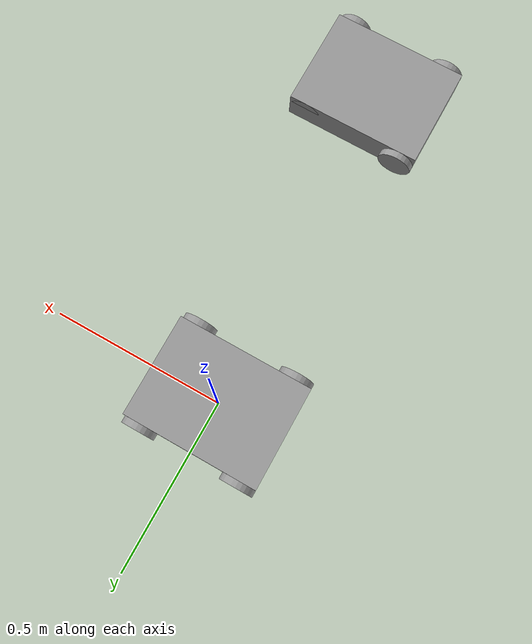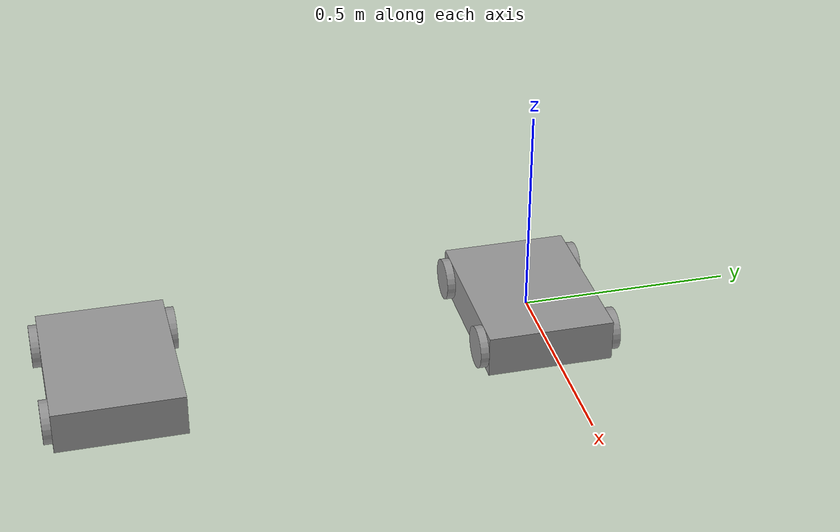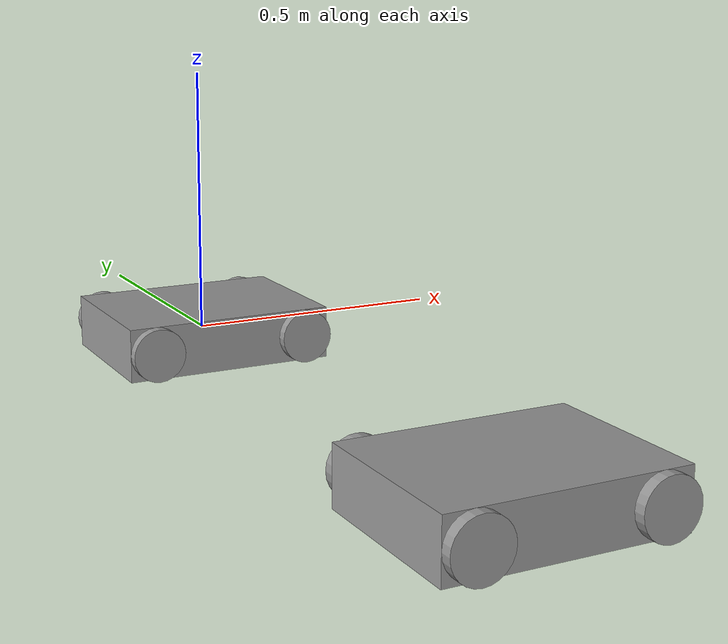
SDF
<?xml version='1.0'?>
<sdf version='1.7'>
  <model name='model'>
    <link name='link_0'>
      <inertial>
        <mass>1</mass>
        <inertia>
          <ixx>0.166667</ixx>
          <ixy>0</ixy>
          <ixz>0</ixz>
          <iyy>0.166667</iyy>
          <iyz>0</iyz>
          <izz>0.166667</izz>
        </inertia>
        <pose>0 0 0 0 -0 0</pose>
      </inertial>
      <pose>0 -2e-06 0 0 -0 0</pose>
      <gravity>1</gravity>
      <self_collide>0</self_collide>
      <kinematic>0</kinematic>
      <enable_wind>0</enable_wind>
      <visual name='visual'>
        <pose>0 0 0 0 -0 0</pose>
        <geometry>
          <box>
            <size>0.4 0.3 0.1</size>
          </box>
        </geometry>
        <material>
          <lighting>1</lighting>
          <script>
            <uri>file://media/materials/scripts/gazebo.material</uri>
            <name>Gazebo/Grey</name>
          </script>
          <shader type='pixel'>
            <normal_map>__default__</normal_map>
          </shader>
          <ambient>0.3 0.3 0.3 1</ambient>
          <diffuse>0.7 0.7 0.7 1</diffuse>
          <specular>0.01 0.01 0.01 1</specular>
          <emissive>0 0 0 1</emissive>
        </material>
        <transparency>0</transparency>
        <cast_shadows>1</cast_shadows>
      </visual>
      <collision name='collision'>
        <laser_retro>0</laser_retro>
        <max_contacts>10</max_contacts>
        <pose>0 0 0 0 -0 0</pose>
        <geometry>
          <box>
            <size>0.4 0.3 0.1</size>
          </box>
        </geometry>
        <surface>
          <friction>
            <ode>
              <mu>1</mu>
              <mu2>1</mu2>
              <fdir1>0 0 0</fdir1>
              <slip1>0</slip1>
              <slip2>0</slip2>
            </ode>
            <torsional>
              <coefficient>1</coefficient>
              <patch_radius>0</patch_radius>
              <surface_radius>0</surface_radius>
              <use_patch_radius>1</use_patch_radius>
              <ode>
                <slip>0</slip>
              </ode>
            </torsional>
          </friction>
          <bounce>
            <restitution_coefficient>0</restitution_coefficient>
            <threshold>1e+06</threshold>
          </bounce>
          <contact>
            <collide_without_contact>0</collide_without_contact>
            <collide_without_contact_bitmask>1</collide_without_contact_bitmask>
            <collide_bitmask>1</collide_bitmask>
            <ode>
              <soft_cfm>0</soft_cfm>
              <soft_erp>0.2</soft_erp>
              <kp>1e+13</kp>
              <kd>1</kd>
              <max_vel>0.01</max_vel>
              <min_depth>0</min_depth>
            </ode>
            <bullet>
              <split_impulse>1</split_impulse>
              <split_impulse_penetration_threshold>-0.01</split_impulse_penetration_threshold>
              <soft_cfm>0</soft_cfm>
              <soft_erp>0.2</soft_erp>
              <kp>1e+13</kp>
              <kd>1</kd>
            </bullet>
          </contact>
        </surface>
      </collision>
    </link>
    <link name='link_0_clone'>
      <inertial>
        <mass>1</mass>
        <inertia>
          <ixx>0.166667</ixx>
          <ixy>0</ixy>
          <ixz>0</ixz>
          <iyy>0.166667</iyy>
          <iyz>0</iyz>
          <izz>0.166667</izz>
        </inertia>
        <pose>0 0 0 0 -0 0</pose>
      </inertial>
      <pose>0.052453 -1.00786 0 0 -0 0</pose>
      <gravity>1</gravity>
      <self_collide>0</self_collide>
      <kinematic>0</kinematic>
      <enable_wind>0</enable_wind>
      <visual name='visual'>
        <pose>0 0 0 0 -0 0</pose>
        <geometry>
          <box>
            <size>0.4 0.3 0.1</size>
          </box>
        </geometry>
        <material>
          <lighting>1</lighting>
          <script>
            <uri>file://media/materials/scripts/gazebo.material</uri>
            <name>Gazebo/Grey</name>
          </script>
          <shader type='pixel'>
            <normal_map>__default__</normal_map>
          </shader>
          <ambient>0.3 0.3 0.3 1</ambient>
          <diffuse>0.7 0.7 0.7 1</diffuse>
          <specular>0.01 0.01 0.01 1</specular>
          <emissive>0 0 0 1</emissive>
        </material>
        <transparency>0</transparency>
        <cast_shadows>1</cast_shadows>
      </visual>
      <collision name='collision'>
        <laser_retro>0</laser_retro>
        <max_contacts>10</max_contacts>
        <pose>0 0 0 0 -0 0</pose>
        <geometry>
          <box>
            <size>0.4 0.3 0.1</size>
          </box>
        </geometry>
        <surface>
          <friction>
            <ode>
              <mu>1</mu>
              <mu2>1</mu2>
              <fdir1>0 0 0</fdir1>
              <slip1>0</slip1>
              <slip2>0</slip2>
            </ode>
            <torsional>
              <coefficient>1</coefficient>
              <patch_radius>0</patch_radius>
              <surface_radius>0</surface_radius>
              <use_patch_radius>1</use_patch_radius>
              <ode>
                <slip>0</slip>
              </ode>
            </torsional>
          </friction>
          <bounce>
            <restitution_coefficient>0</restitution_coefficient>
            <threshold>1e+06</threshold>
          </bounce>
          <contact>
            <collide_without_contact>0</collide_without_contact>
            <collide_without_contact_bitmask>1</collide_without_contact_bitmask>
            <collide_bitmask>1</collide_bitmask>
            <ode>
              <soft_cfm>0</soft_cfm>
              <soft_erp>0.2</soft_erp>
              <kp>1e+13</kp>
              <kd>1</kd>
              <max_vel>0.01</max_vel>
              <min_depth>0</min_depth>
            </ode>
            <bullet>
              <split_impulse>1</split_impulse>
              <split_impulse_penetration_threshold>-0.01</split_impulse_penetration_threshold>
              <soft_cfm>0</soft_cfm>
              <soft_erp>0.2</soft_erp>
              <kp>1e+13</kp>
              <kd>1</kd>
            </bullet>
          </contact>
        </surface>
      </collision>
    </link>
    <link name='link_1'>
      <inertial>
        <mass>1</mass>
        <inertia>
          <ixx>0.145833</ixx>
          <ixy>0</ixy>
          <ixz>0</ixz>
          <iyy>0.145833</iyy>
          <iyz>0</iyz>
          <izz>0.125</izz>
        </inertia>
        <pose>0 0 0 0 -0 0</pose>
      </inertial>
      <pose>-0.149999 -0.160015 0 1.5707 -0 0</pose>
      <gravity>1</gravity>
      <self_collide>0</self_collide>
      <kinematic>0</kinematic>
      <enable_wind>0</enable_wind>
      <visual name='visual'>
        <pose>0 0 0 0 -0 0</pose>
        <geometry>
          <cylinder>
            <radius>0.05</radius>
            <length>0.02</length>
          </cylinder>
        </geometry>
        <material>
          <lighting>1</lighting>
          <script>
            <uri>file://media/materials/scripts/gazebo.material</uri>
            <name>Gazebo/Grey</name>
          </script>
          <shader type='pixel'>
            <normal_map>__default__</normal_map>
          </shader>
          <ambient>0.3 0.3 0.3 1</ambient>
          <diffuse>0.7 0.7 0.7 1</diffuse>
          <specular>0.01 0.01 0.01 1</specular>
          <emissive>0 0 0 1</emissive>
        </material>
        <transparency>0</transparency>
        <cast_shadows>1</cast_shadows>
      </visual>
      <collision name='collision'>
        <laser_retro>0</laser_retro>
        <max_contacts>10</max_contacts>
        <pose>0 0 0 0 -0 0</pose>
        <geometry>
          <cylinder>
            <radius>0.05</radius>
            <length>0.02</length>
          </cylinder>
        </geometry>
        <surface>
          <friction>
            <ode>
              <mu>1</mu>
              <mu2>1</mu2>
              <fdir1>0 0 0</fdir1>
              <slip1>0</slip1>
              <slip2>0</slip2>
            </ode>
            <torsional>
              <coefficient>1</coefficient>
              <patch_radius>0</patch_radius>
              <surface_radius>0</surface_radius>
              <use_patch_radius>1</use_patch_radius>
              <ode>
                <slip>0</slip>
              </ode>
            </torsional>
          </friction>
          <bounce>
            <restitution_coefficient>0</restitution_coefficient>
            <threshold>1e+06</threshold>
          </bounce>
          <contact>
            <collide_without_contact>0</collide_without_contact>
            <collide_without_contact_bitmask>1</collide_without_contact_bitmask>
            <collide_bitmask>1</collide_bitmask>
            <ode>
              <soft_cfm>0</soft_cfm>
              <soft_erp>0.2</soft_erp>
              <kp>1e+13</kp>
              <kd>1</kd>
              <max_vel>0.01</max_vel>
              <min_depth>0</min_depth>
            </ode>
            <bullet>
              <split_impulse>1</split_impulse>
              <split_impulse_penetration_threshold>-0.01</split_impulse_penetration_threshold>
              <soft_cfm>0</soft_cfm>
              <soft_erp>0.2</soft_erp>
              <kp>1e+13</kp>
              <kd>1</kd>
            </bullet>
          </contact>
        </surface>
      </collision>
    </link>
    <link name='link_1_clone'>
      <inertial>
        <mass>1</mass>
        <inertia>
          <ixx>0.145833</ixx>
          <ixy>0</ixy>
          <ixz>0</ixz>
          <iyy>0.145833</iyy>
          <iyz>0</iyz>
          <izz>0.125</izz>
        </inertia>
        <pose>0 0 0 0 -0 0</pose>
      </inertial>
      <pose>0.15 0.160003 0 1.5707 -0 0</pose>
      <gravity>1</gravity>
      <self_collide>0</self_collide>
      <kinematic>0</kinematic>
      <enable_wind>0</enable_wind>
      <visual name='visual'>
        <pose>0 0 0 0 -0 0</pose>
        <geometry>
          <cylinder>
            <radius>0.05</radius>
            <length>0.02</length>
          </cylinder>
        </geometry>
        <material>
          <lighting>1</lighting>
          <script>
            <uri>file://media/materials/scripts/gazebo.material</uri>
            <name>Gazebo/Grey</name>
          </script>
          <shader type='pixel'>
            <normal_map>__default__</normal_map>
          </shader>
          <ambient>0.3 0.3 0.3 1</ambient>
          <diffuse>0.7 0.7 0.7 1</diffuse>
          <specular>0.01 0.01 0.01 1</specular>
          <emissive>0 0 0 1</emissive>
        </material>
        <transparency>0</transparency>
        <cast_shadows>1</cast_shadows>
      </visual>
      <collision name='collision'>
        <laser_retro>0</laser_retro>
        <max_contacts>10</max_contacts>
        <pose>0 0 0 0 -0 0</pose>
        <geometry>
          <cylinder>
            <radius>0.05</radius>
            <length>0.02</length>
          </cylinder>
        </geometry>
        <surface>
          <friction>
            <ode>
              <mu>1</mu>
              <mu2>1</mu2>
              <fdir1>0 0 0</fdir1>
              <slip1>0</slip1>
              <slip2>0</slip2>
            </ode>
            <torsional>
              <coefficient>1</coefficient>
              <patch_radius>0</patch_radius>
              <surface_radius>0</surface_radius>
              <use_patch_radius>1</use_patch_radius>
              <ode>
                <slip>0</slip>
              </ode>
            </torsional>
          </friction>
          <bounce>
            <restitution_coefficient>0</restitution_coefficient>
            <threshold>1e+06</threshold>
          </bounce>
          <contact>
            <collide_without_contact>0</collide_without_contact>
            <collide_without_contact_bitmask>1</collide_without_contact_bitmask>
            <collide_bitmask>1</collide_bitmask>
            <ode>
              <soft_cfm>0</soft_cfm>
              <soft_erp>0.2</soft_erp>
              <kp>1e+13</kp>
              <kd>1</kd>
              <max_vel>0.01</max_vel>
              <min_depth>0</min_depth>
            </ode>
            <bullet>
              <split_impulse>1</split_impulse>
              <split_impulse_penetration_threshold>-0.01</split_impulse_penetration_threshold>
              <soft_cfm>0</soft_cfm>
              <soft_erp>0.2</soft_erp>
              <kp>1e+13</kp>
              <kd>1</kd>
            </bullet>
          </contact>
        </surface>
      </collision>
    </link>
    <link name='link_1_clone_0'>
      <inertial>
        <mass>1</mass>
        <inertia>
          <ixx>0.145833</ixx>
          <ixy>0</ixy>
          <ixz>0</ixz>
          <iyy>0.145833</iyy>
          <iyz>0</iyz>
          <izz>0.125</izz>
        </inertia>
        <pose>0 0 0 0 -0 0</pose>
      </inertial>
      <pose>0.15 -0.160007 0 1.5707 -0 0</pose>
      <gravity>1</gravity>
      <self_collide>0</self_collide>
      <kinematic>0</kinematic>
      <enable_wind>0</enable_wind>
      <visual name='visual'>
        <pose>0 0 0 0 -0 0</pose>
        <geometry>
          <cylinder>
            <radius>0.05</radius>
            <length>0.02</length>
          </cylinder>
        </geometry>
        <material>
          <lighting>1</lighting>
          <script>
            <uri>file://media/materials/scripts/gazebo.material</uri>
            <name>Gazebo/Grey</name>
          </script>
          <shader type='pixel'>
            <normal_map>__default__</normal_map>
          </shader>
          <ambient>0.3 0.3 0.3 1</ambient>
          <diffuse>0.7 0.7 0.7 1</diffuse>
          <specular>0.01 0.01 0.01 1</specular>
          <emissive>0 0 0 1</emissive>
        </material>
        <transparency>0</transparency>
        <cast_shadows>1</cast_shadows>
      </visual>
      <collision name='collision'>
        <laser_retro>0</laser_retro>
        <max_contacts>10</max_contacts>
        <pose>0 0 0 0 -0 0</pose>
        <geometry>
          <cylinder>
            <radius>0.05</radius>
            <length>0.02</length>
          </cylinder>
        </geometry>
        <surface>
          <friction>
            <ode>
              <mu>1</mu>
              <mu2>1</mu2>
              <fdir1>0 0 0</fdir1>
              <slip1>0</slip1>
              <slip2>0</slip2>
            </ode>
            <torsional>
              <coefficient>1</coefficient>
              <patch_radius>0</patch_radius>
              <surface_radius>0</surface_radius>
              <use_patch_radius>1</use_patch_radius>
              <ode>
                <slip>0</slip>
              </ode>
            </torsional>
          </friction>
          <bounce>
            <restitution_coefficient>0</restitution_coefficient>
            <threshold>1e+06</threshold>
          </bounce>
          <contact>
            <collide_without_contact>0</collide_without_contact>
            <collide_without_contact_bitmask>1</collide_without_contact_bitmask>
            <collide_bitmask>1</collide_bitmask>
            <ode>
              <soft_cfm>0</soft_cfm>
              <soft_erp>0.2</soft_erp>
              <kp>1e+13</kp>
              <kd>1</kd>
              <max_vel>0.01</max_vel>
              <min_depth>0</min_depth>
            </ode>
            <bullet>
              <split_impulse>1</split_impulse>
              <split_impulse_penetration_threshold>-0.01</split_impulse_penetration_threshold>
              <soft_cfm>0</soft_cfm>
              <soft_erp>0.2</soft_erp>
              <kp>1e+13</kp>
              <kd>1</kd>
            </bullet>
          </contact>
        </surface>
      </collision>
    </link>
    <link name='link_1_clone_1'>
      <inertial>
        <mass>1</mass>
        <inertia>
          <ixx>0.145833</ixx>
          <ixy>0</ixy>
          <ixz>0</ixz>
          <iyy>0.145833</iyy>
          <iyz>0</iyz>
          <izz>0.125</izz>
        </inertia>
        <pose>0 0 0 0 -0 0</pose>
      </inertial>
      <pose>-0.149999 0.160003 0 1.5707 -0 0</pose>
      <gravity>1</gravity>
      <self_collide>0</self_collide>
      <kinematic>0</kinematic>
      <enable_wind>0</enable_wind>
      <visual name='visual'>
        <pose>0 0 0 0 -0 0</pose>
        <geometry>
          <cylinder>
            <radius>0.05</radius>
            <length>0.02</length>
          </cylinder>
        </geometry>
        <material>
          <lighting>1</lighting>
          <script>
            <uri>file://media/materials/scripts/gazebo.material</uri>
            <name>Gazebo/Grey</name>
          </script>
          <shader type='pixel'>
            <normal_map>__default__</normal_map>
          </shader>
          <ambient>0.3 0.3 0.3 1</ambient>
          <diffuse>0.7 0.7 0.7 1</diffuse>
          <specular>0.01 0.01 0.01 1</specular>
          <emissive>0 0 0 1</emissive>
        </material>
        <transparency>0</transparency>
        <cast_shadows>1</cast_shadows>
      </visual>
      <collision name='collision'>
        <laser_retro>0</laser_retro>
        <max_contacts>10</max_contacts>
        <pose>0 0 0 0 -0 0</pose>
        <geometry>
          <cylinder>
            <radius>0.05</radius>
            <length>0.02</length>
          </cylinder>
        </geometry>
        <surface>
          <friction>
            <ode>
              <mu>1</mu>
              <mu2>1</mu2>
              <fdir1>0 0 0</fdir1>
              <slip1>0</slip1>
              <slip2>0</slip2>
            </ode>
            <torsional>
              <coefficient>1</coefficient>
              <patch_radius>0</patch_radius>
              <surface_radius>0</surface_radius>
              <use_patch_radius>1</use_patch_radius>
              <ode>
                <slip>0</slip>
              </ode>
            </torsional>
          </friction>
          <bounce>
            <restitution_coefficient>0</restitution_coefficient>
            <threshold>1e+06</threshold>
          </bounce>
          <contact>
            <collide_without_contact>0</collide_without_contact>
            <collide_without_contact_bitmask>1</collide_without_contact_bitmask>
            <collide_bitmask>1</collide_bitmask>
            <ode>
              <soft_cfm>0</soft_cfm>
              <soft_erp>0.2</soft_erp>
              <kp>1e+13</kp>
              <kd>1</kd>
              <max_vel>0.01</max_vel>
              <min_depth>0</min_depth>
            </ode>
            <bullet>
              <split_impulse>1</split_impulse>
              <split_impulse_penetration_threshold>-0.01</split_impulse_penetration_threshold>
              <soft_cfm>0</soft_cfm>
              <soft_erp>0.2</soft_erp>
              <kp>1e+13</kp>
              <kd>1</kd>
            </bullet>
          </contact>
        </surface>
      </collision>
    </link>
    <link name='link_1_clone_2'>
      <inertial>
        <mass>1</mass>
        <inertia>
          <ixx>0.145833</ixx>
          <ixy>0</ixy>
          <ixz>0</ixz>
          <iyy>0.145833</iyy>
          <iyz>0</iyz>
          <izz>0.125</izz>
        </inertia>
        <pose>0 0 0 0 -0 0</pose>
      </inertial>
      <pose>-0.097547 -1.16786 0 1.5707 -0 0</pose>
      <gravity>1</gravity>
      <self_collide>0</self_collide>
      <kinematic>0</kinematic>
      <enable_wind>0</enable_wind>
      <visual name='visual'>
        <pose>0 0 0 0 -0 0</pose>
        <geometry>
          <cylinder>
            <radius>0.05</radius>
            <length>0.02</length>
          </cylinder>
        </geometry>
        <material>
          <lighting>1</lighting>
          <script>
            <uri>file://media/materials/scripts/gazebo.material</uri>
            <name>Gazebo/Grey</name>
          </script>
          <shader type='pixel'>
            <normal_map>__default__</normal_map>
          </shader>
          <ambient>0.3 0.3 0.3 1</ambient>
          <diffuse>0.7 0.7 0.7 1</diffuse>
          <specular>0.01 0.01 0.01 1</specular>
          <emissive>0 0 0 1</emissive>
        </material>
        <transparency>0</transparency>
        <cast_shadows>1</cast_shadows>
      </visual>
      <collision name='collision'>
        <laser_retro>0</laser_retro>
        <max_contacts>10</max_contacts>
        <pose>0 0 0 0 -0 0</pose>
        <geometry>
          <cylinder>
            <radius>0.05</radius>
            <length>0.02</length>
          </cylinder>
        </geometry>
        <surface>
          <friction>
            <ode>
              <mu>1</mu>
              <mu2>1</mu2>
              <fdir1>0 0 0</fdir1>
              <slip1>0</slip1>
              <slip2>0</slip2>
            </ode>
            <torsional>
              <coefficient>1</coefficient>
              <patch_radius>0</patch_radius>
              <surface_radius>0</surface_radius>
              <use_patch_radius>1</use_patch_radius>
              <ode>
                <slip>0</slip>
              </ode>
            </torsional>
          </friction>
          <bounce>
            <restitution_coefficient>0</restitution_coefficient>
            <threshold>1e+06</threshold>
          </bounce>
          <contact>
            <collide_without_contact>0</collide_without_contact>
            <collide_without_contact_bitmask>1</collide_without_contact_bitmask>
            <collide_bitmask>1</collide_bitmask>
            <ode>
              <soft_cfm>0</soft_cfm>
              <soft_erp>0.2</soft_erp>
              <kp>1e+13</kp>
              <kd>1</kd>
              <max_vel>0.01</max_vel>
              <min_depth>0</min_depth>
            </ode>
            <bullet>
              <split_impulse>1</split_impulse>
              <split_impulse_penetration_threshold>-0.01</split_impulse_penetration_threshold>
              <soft_cfm>0</soft_cfm>
              <soft_erp>0.2</soft_erp>
              <kp>1e+13</kp>
              <kd>1</kd>
            </bullet>
          </contact>
        </surface>
      </collision>
    </link>
    <link name='link_1_clone_2_clone'>
      <inertial>
        <mass>1</mass>
        <inertia>
          <ixx>0.145833</ixx>
          <ixy>0</ixy>
          <ixz>0</ixz>
          <iyy>0.145833</iyy>
          <iyz>0</iyz>
          <izz>0.125</izz>
        </inertia>
        <pose>0 0 0 0 -0 0</pose>
      </inertial>
      <pose>-0.097547 -0.847852 0 1.5707 -0 0</pose>
      <gravity>1</gravity>
      <self_collide>0</self_collide>
      <kinematic>0</kinematic>
      <enable_wind>0</enable_wind>
      <visual name='visual'>
        <pose>0 0 0 0 -0 0</pose>
        <geometry>
          <cylinder>
            <radius>0.05</radius>
            <length>0.02</length>
          </cylinder>
        </geometry>
        <material>
          <lighting>1</lighting>
          <script>
            <uri>file://media/materials/scripts/gazebo.material</uri>
            <name>Gazebo/Grey</name>
          </script>
          <shader type='pixel'>
            <normal_map>__default__</normal_map>
          </shader>
          <ambient>0.3 0.3 0.3 1</ambient>
          <diffuse>0.7 0.7 0.7 1</diffuse>
          <specular>0.01 0.01 0.01 1</specular>
          <emissive>0 0 0 1</emissive>
        </material>
        <transparency>0</transparency>
        <cast_shadows>1</cast_shadows>
      </visual>
      <collision name='collision'>
        <laser_retro>0</laser_retro>
        <max_contacts>10</max_contacts>
        <pose>0 0 0 0 -0 0</pose>
        <geometry>
          <cylinder>
            <radius>0.05</radius>
            <length>0.02</length>
          </cylinder>
        </geometry>
        <surface>
          <friction>
            <ode>
              <mu>1</mu>
              <mu2>1</mu2>
              <fdir1>0 0 0</fdir1>
              <slip1>0</slip1>
              <slip2>0</slip2>
            </ode>
            <torsional>
              <coefficient>1</coefficient>
              <patch_radius>0</patch_radius>
              <surface_radius>0</surface_radius>
              <use_patch_radius>1</use_patch_radius>
              <ode>
                <slip>0</slip>
              </ode>
            </torsional>
          </friction>
          <bounce>
            <restitution_coefficient>0</restitution_coefficient>
            <threshold>1e+06</threshold>
          </bounce>
          <contact>
            <collide_without_contact>0</collide_without_contact>
            <collide_without_contact_bitmask>1</collide_without_contact_bitmask>
            <collide_bitmask>1</collide_bitmask>
            <ode>
              <soft_cfm>0</soft_cfm>
              <soft_erp>0.2</soft_erp>
              <kp>1e+13</kp>
              <kd>1</kd>
              <max_vel>0.01</max_vel>
              <min_depth>0</min_depth>
            </ode>
            <bullet>
              <split_impulse>1</split_impulse>
              <split_impulse_penetration_threshold>-0.01</split_impulse_penetration_threshold>
              <soft_cfm>0</soft_cfm>
              <soft_erp>0.2</soft_erp>
              <kp>1e+13</kp>
              <kd>1</kd>
            </bullet>
          </contact>
        </surface>
      </collision>
    </link>
    <link name='link_1_clone_2_clone_clone'>
      <inertial>
        <mass>1</mass>
        <inertia>
          <ixx>0.145833</ixx>
          <ixy>0</ixy>
          <ixz>0</ixz>
          <iyy>0.145833</iyy>
          <iyz>0</iyz>
          <izz>0.125</izz>
        </inertia>
        <pose>0 0 0 0 -0 0</pose>
      </inertial>
      <pose>0.202453 -0.867862 0 1.5707 -0 0</pose>
      <gravity>1</gravity>
      <self_collide>0</self_collide>
      <kinematic>0</kinematic>
      <enable_wind>0</enable_wind>
      <visual name='visual'>
        <pose>0 0 0 0 -0 0</pose>
        <geometry>
          <cylinder>
            <radius>0.05</radius>
            <length>0.02</length>
          </cylinder>
        </geometry>
        <material>
          <lighting>1</lighting>
          <script>
            <uri>file://media/materials/scripts/gazebo.material</uri>
            <name>Gazebo/Grey</name>
          </script>
          <shader type='pixel'>
            <normal_map>__default__</normal_map>
          </shader>
          <ambient>0.3 0.3 0.3 1</ambient>
          <diffuse>0.7 0.7 0.7 1</diffuse>
          <specular>0.01 0.01 0.01 1</specular>
          <emissive>0 0 0 1</emissive>
        </material>
        <transparency>0</transparency>
        <cast_shadows>1</cast_shadows>
      </visual>
      <collision name='collision'>
        <laser_retro>0</laser_retro>
        <max_contacts>10</max_contacts>
        <pose>0 0 0 0 -0 0</pose>
        <geometry>
          <cylinder>
            <radius>0.05</radius>
            <length>0.02</length>
          </cylinder>
        </geometry>
        <surface>
          <friction>
            <ode>
              <mu>1</mu>
              <mu2>1</mu2>
              <fdir1>0 0 0</fdir1>
              <slip1>0</slip1>
              <slip2>0</slip2>
            </ode>
            <torsional>
              <coefficient>1</coefficient>
              <patch_radius>0</patch_radius>
              <surface_radius>0</surface_radius>
              <use_patch_radius>1</use_patch_radius>
              <ode>
                <slip>0</slip>
              </ode>
            </torsional>
          </friction>
          <bounce>
            <restitution_coefficient>0</restitution_coefficient>
            <threshold>1e+06</threshold>
          </bounce>
          <contact>
            <collide_without_contact>0</collide_without_contact>
            <collide_without_contact_bitmask>1</collide_without_contact_bitmask>
            <collide_bitmask>1</collide_bitmask>
            <ode>
              <soft_cfm>0</soft_cfm>
              <soft_erp>0.2</soft_erp>
              <kp>1e+13</kp>
              <kd>1</kd>
              <max_vel>0.01</max_vel>
              <min_depth>0</min_depth>
            </ode>
            <bullet>
              <split_impulse>1</split_impulse>
              <split_impulse_penetration_threshold>-0.01</split_impulse_penetration_threshold>
              <soft_cfm>0</soft_cfm>
              <soft_erp>0.2</soft_erp>
              <kp>1e+13</kp>
              <kd>1</kd>
            </bullet>
          </contact>
        </surface>
      </collision>
    </link>
    <link name='link_1_clone_2_clone_clone_clone'>
      <inertial>
        <mass>1</mass>
        <inertia>
          <ixx>0.145833</ixx>
          <ixy>0</ixy>
          <ixz>0</ixz>
          <iyy>0.145833</iyy>
          <iyz>0</iyz>
          <izz>0.125</izz>
        </inertia>
        <pose>0 0 0 0 -0 0</pose>
      </inertial>
      <pose>0.202453 -1.16786 0 1.5707 -0 0</pose>
      <gravity>1</gravity>
      <self_collide>0</self_collide>
      <kinematic>0</kinematic>
      <enable_wind>0</enable_wind>
      <visual name='visual'>
        <pose>0 0 0 0 -0 0</pose>
        <geometry>
          <cylinder>
            <radius>0.05</radius>
            <length>0.02</length>
          </cylinder>
        </geometry>
        <material>
          <lighting>1</lighting>
          <script>
            <uri>file://media/materials/scripts/gazebo.material</uri>
            <name>Gazebo/Grey</name>
          </script>
          <shader type='pixel'>
            <normal_map>__default__</normal_map>
          </shader>
          <ambient>0.3 0.3 0.3 1</ambient>
          <diffuse>0.7 0.7 0.7 1</diffuse>
          <specular>0.01 0.01 0.01 1</specular>
          <emissive>0 0 0 1</emissive>
        </material>
        <transparency>0</transparency>
        <cast_shadows>1</cast_shadows>
      </visual>
      <collision name='collision'>
        <laser_retro>0</laser_retro>
        <max_contacts>10</max_contacts>
        <pose>0 0 0 0 -0 0</pose>
        <geometry>
          <cylinder>
            <radius>0.05</radius>
            <length>0.02</length>
          </cylinder>
        </geometry>
        <surface>
          <friction>
            <ode>
              <mu>1</mu>
              <mu2>1</mu2>
              <fdir1>0 0 0</fdir1>
              <slip1>0</slip1>
              <slip2>0</slip2>
            </ode>
            <torsional>
              <coefficient>1</coefficient>
              <patch_radius>0</patch_radius>
              <surface_radius>0</surface_radius>
              <use_patch_radius>1</use_patch_radius>
              <ode>
                <slip>0</slip>
              </ode>
            </torsional>
          </friction>
          <bounce>
            <restitution_coefficient>0</restitution_coefficient>
            <threshold>1e+06</threshold>
          </bounce>
          <contact>
            <collide_without_contact>0</collide_without_contact>
            <collide_without_contact_bitmask>1</collide_without_contact_bitmask>
            <collide_bitmask>1</collide_bitmask>
            <ode>
              <soft_cfm>0</soft_cfm>
              <soft_erp>0.2</soft_erp>
              <kp>1e+13</kp>
              <kd>1</kd>
              <max_vel>0.01</max_vel>
              <min_depth>0</min_depth>
            </ode>
            <bullet>
              <split_impulse>1</split_impulse>
              <split_impulse_penetration_threshold>-0.01</split_impulse_penetration_threshold>
              <soft_cfm>0</soft_cfm>
              <soft_erp>0.2</soft_erp>
              <kp>1e+13</kp>
              <kd>1</kd>
            </bullet>
          </contact>
        </surface>
      </collision>
    </link>
    <joint name='link_0_JOINT_0' type='revolute'>
      <parent>link_0</parent>
      <child>link_1</child>
      <pose>0 0 0 0 -0 0</pose>
      <axis>
        <xyz>0 0 1</xyz>
        <limit>
          <lower>-1.79769e+308</lower>
          <upper>1.79769e+308</upper>
          <effort>-1</effort>
          <velocity>-1</velocity>
        </limit>
        <dynamics>
          <spring_reference>0</spring_reference>
          <spring_stiffness>0</spring_stiffness>
          <damping>0</damping>
          <friction>0</friction>
        </dynamics>
      </axis>
      <physics>
        <ode>
          <limit>
            <cfm>0</cfm>
            <erp>0.2</erp>
          </limit>
          <suspension>
            <cfm>0</cfm>
            <erp>0.2</erp>
          </suspension>
        </ode>
      </physics>
    </joint>
    <joint name='link_0_JOINT_1' type='revolute'>
      <parent>link_0</parent>
      <child>link_1_clone</child>
      <pose>0 0 0 0 -0 0</pose>
      <axis>
        <xyz>0 0 1</xyz>
        <limit>
          <lower>-1.79769e+308</lower>
          <upper>1.79769e+308</upper>
          <effort>-1</effort>
          <velocity>-1</velocity>
        </limit>
        <dynamics>
          <spring_reference>0</spring_reference>
          <spring_stiffness>0</spring_stiffness>
          <damping>0</damping>
          <friction>0</friction>
        </dynamics>
      </axis>
      <physics>
        <ode>
          <limit>
            <cfm>0</cfm>
            <erp>0.2</erp>
          </limit>
          <suspension>
            <cfm>0</cfm>
            <erp>0.2</erp>
          </suspension>
        </ode>
      </physics>
    </joint>
    <joint name='link_0_JOINT_2' type='revolute'>
      <parent>link_0</parent>
      <child>link_1_clone_0</child>
      <pose>0 0 0 0 -0 0</pose>
      <axis>
        <xyz>0 0 1</xyz>
        <limit>
          <lower>-1.79769e+308</lower>
          <upper>1.79769e+308</upper>
          <effort>-1</effort>
          <velocity>-1</velocity>
        </limit>
        <dynamics>
          <spring_reference>0</spring_reference>
          <spring_stiffness>0</spring_stiffness>
          <damping>0</damping>
          <friction>0</friction>
        </dynamics>
      </axis>
      <physics>
        <ode>
          <limit>
            <cfm>0</cfm>
            <erp>0.2</erp>
          </limit>
          <suspension>
            <cfm>0</cfm>
            <erp>0.2</erp>
          </suspension>
        </ode>
      </physics>
    </joint>
    <joint name='link_0_JOINT_3' type='revolute'>
      <parent>link_0</parent>
      <child>link_1_clone_1</child>
      <pose>0 0 0 0 -0 0</pose>
      <axis>
        <xyz>0 0 1</xyz>
        <limit>
          <lower>-1.79769e+308</lower>
          <upper>1.79769e+308</upper>
          <effort>-1</effort>
          <velocity>-1</velocity>
        </limit>
        <dynamics>
          <spring_reference>0</spring_reference>
          <spring_stiffness>0</spring_stiffness>
          <damping>0</damping>
          <friction>0</friction>
        </dynamics>
      </axis>
      <physics>
        <ode>
          <limit>
            <cfm>0</cfm>
            <erp>0.2</erp>
          </limit>
          <suspension>
            <cfm>0</cfm>
            <erp>0.2</erp>
          </suspension>
        </ode>
      </physics>
    </joint>
    <joint name='link_0_clone_JOINT_4' type='revolute'>
      <parent>link_0_clone</parent>
      <child>link_1_clone_2</child>
      <pose>0 0 0 0 -0 0</pose>
      <axis>
        <xyz>0 0 1</xyz>
        <limit>
          <lower>-1.79769e+308</lower>
          <upper>1.79769e+308</upper>
          <effort>-1</effort>
          <velocity>-1</velocity>
        </limit>
        <dynamics>
          <spring_reference>0</spring_reference>
          <spring_stiffness>0</spring_stiffness>
          <damping>0</damping>
        </dynamics>
      </axis>
      <physics>
        <ode>
          <limit>
            <cfm>0</cfm>
            <erp>0.2</erp>
          </limit>
          <suspension>
            <cfm>0</cfm>
            <erp>0.2</erp>
          </suspension>
        </ode>
      </physics>
    </joint>
    <joint name='link_0_clone_JOINT_6' type='revolute'>
      <parent>link_0_clone</parent>
      <child>link_1_clone_2_clone_clone_clone</child>
      <pose>0 0 0 0 -0 0</pose>
      <axis>
        <xyz>1 0 0</xyz>
        <limit>
          <lower>-1.79769e+308</lower>
          <upper>1.79769e+308</upper>
          <effort>-1</effort>
          <velocity>-1</velocity>
        </limit>
        <dynamics>
          <spring_reference>0</spring_reference>
          <spring_stiffness>0</spring_stiffness>
          <damping>0</damping>
        </dynamics>
      </axis>
      <physics>
        <ode>
          <limit>
            <cfm>0</cfm>
            <erp>0.2</erp>
          </limit>
          <suspension>
            <cfm>0</cfm>
            <erp>0.2</erp>
          </suspension>
        </ode>
      </physics>
    </joint>
    <joint name='link_0_clone_JOINT_7' type='revolute'>
      <parent>link_0_clone</parent>
      <child>link_1_clone_2_clone</child>
      <pose>0 0 0 0 -0 0</pose>
      <axis>
        <xyz>0 0 1</xyz>
        <limit>
          <lower>-1.79769e+308</lower>
          <upper>1.79769e+308</upper>
          <effort>-1</effort>
          <velocity>-1</velocity>
        </limit>
        <dynamics>
          <spring_reference>0</spring_reference>
          <spring_stiffness>0</spring_stiffness>
          <damping>0</damping>
        </dynamics>
      </axis>
      <physics>
        <ode>
          <limit>
            <cfm>0</cfm>
            <erp>0.2</erp>
          </limit>
          <suspension>
            <cfm>0</cfm>
            <erp>0.2</erp>
          </suspension>
        </ode>
      </physics>
    </joint>
    <joint name='link_0_clone_JOINT_8' type='revolute'>
      <parent>link_0_clone</parent>
      <child>link_1_clone_2_clone_clone</child>
      <pose>0 0 0 0 -0 0</pose>
      <axis>
        <xyz>0 0 1</xyz>
        <limit>
          <lower>-1.79769e+308</lower>
          <upper>1.79769e+308</upper>
          <effort>-1</effort>
          <velocity>-1</velocity>
        </limit>
        <dynamics>
          <spring_reference>0</spring_reference>
          <spring_stiffness>0</spring_stiffness>
          <damping>0</damping>
        </dynamics>
      </axis>
      <physics>
        <ode>
          <limit>
            <cfm>0</cfm>
            <erp>0.2</erp>
          </limit>
          <suspension>
            <cfm>0</cfm>
            <erp>0.2</erp>
          </suspension>
        </ode>
      </physics>
    </joint>
    <static>0</static>
    <allow_auto_disable>1</allow_auto_disable>
  </model>
</sdf>
